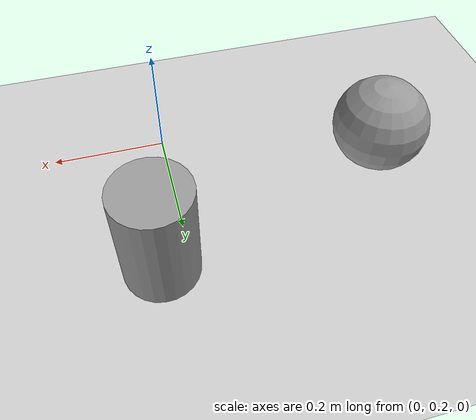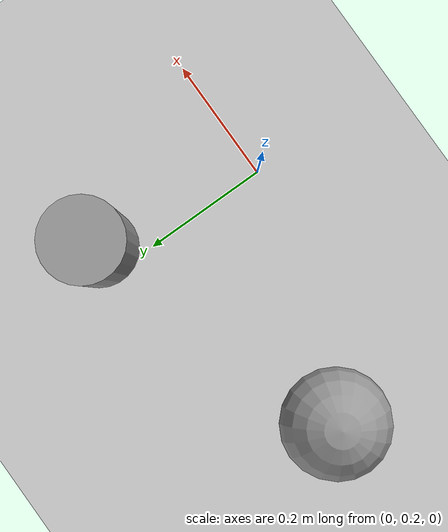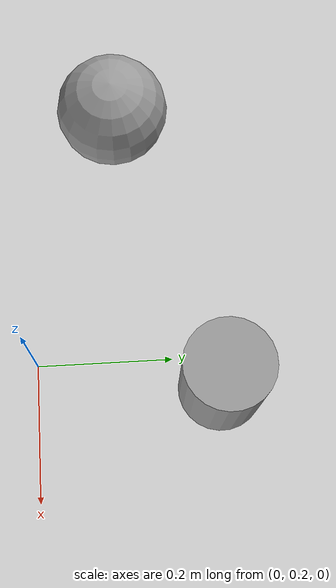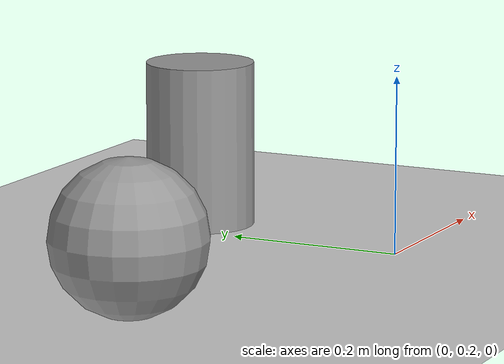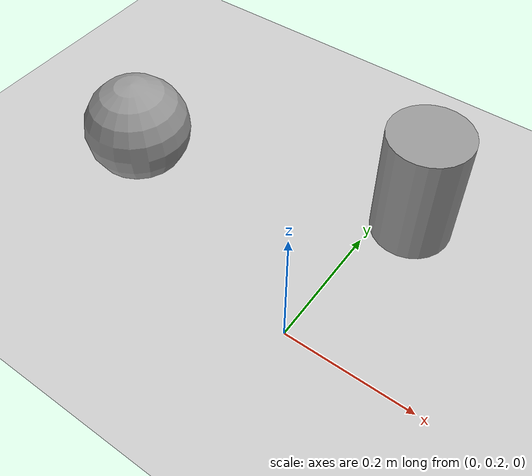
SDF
<sdf version="1.6">
 <world name="default">
  <model name="ground_plane">
   <static>1</static>
   <link name="link">
    <collision name="collision">
     <geometry><plane><normal>0 0 1</normal><size>100 100</size></plane></geometry>
     <surface>
      <contact><collide_bitmask>65535</collide_bitmask></contact>
      <friction><ode><mu>100</mu><mu2>50</mu2></ode></friction>
     </surface>
    </collision>
    <visual name="visual">
     <cast_shadows>0</cast_shadows>
     <geometry><plane><normal>0 0 1</normal><size>100 100</size></plane></geometry>
     <material>
      <script><uri>file://media/materials/scripts/gazebo.material</uri><name>Gazebo/Grey</name></script>
     </material>
    </visual>
   </link>
  </model>
  <model name="unit_sphere_soft">
   <link name="link">
    <inertial>
     <mass>0.002</mass>
     <inertia>
      <ixx>5.55e-06</ixx>
      <ixy>0</ixy>
      <ixz>0</ixz>
      <iyy>5.55e-06</iyy>
      <iyz>0</iyz>
      <izz>5.55e-06</izz>
     </inertia>
    </inertial>
    <visual name="visual">
     <geometry><sphere><radius>0.0832608</radius></sphere></geometry>
     <material>
      <script><name>Gazebo/Grey</name><uri>file://media/materials/scripts/gazebo.material</uri></script>
      <shader type="vertex"><normal_map>__default__</normal_map></shader>
      <ambient>0.3 0.3 0.3 1</ambient>
      <diffuse>0.7 0.7 0.7 1</diffuse>
      <specular>0.01 0.01 0.01 1</specular>
      <emissive>0 0 0 1</emissive>
     </material>
    </visual>
    <collision name="collision">
     <geometry><sphere><radius>0.083261</radius></sphere></geometry>
     <surface>
      <friction>
       <ode><mu>2000</mu><mu2>2000</mu2><fdir1>0 0 0</fdir1><slip1>0</slip1><slip2>0</slip2></ode>
       <torsional>
        <coefficient>1</coefficient>
        <patch_radius>0</patch_radius>
        <surface_radius>0</surface_radius>
        <use_patch_radius>0</use_patch_radius>
        <ode><slip>0</slip></ode>
       </torsional>
      </friction>
      <bounce><restitution_coefficient>0</restitution_coefficient><threshold>1e+06</threshold></bounce>
      <contact>
       <collide_without_contact>0</collide_without_contact>
       <collide_without_contact_bitmask>1</collide_without_contact_bitmask>
       <collide_bitmask>1</collide_bitmask>
       <ode>
        <soft_cfm>2</soft_cfm>
        <soft_erp>2.2</soft_erp>
        <kp>1e+13</kp>
        <kd>1</kd>
        <max_vel>0.01</max_vel>
        <min_depth>0</min_depth>
       </ode>
       <bullet>
        <split_impulse>1</split_impulse>
        <split_impulse_penetration_threshold>-0.01</split_impulse_penetration_threshold>
        <soft_cfm>2</soft_cfm>
        <soft_erp>2.2</soft_erp>
        <kp>1e+13</kp>
        <kd>1</kd>
       </bullet>
      </contact>
     </surface>
    </collision>
   </link>
   <static>0</static>
   <pose>-0.37253 0.329519 0.083261 0 -0 0</pose>
  </model>
  <model name="unit_cylinder_soft">
   <link name="link_0">
    <inertial>
     <mass>2.9756</mass>
     <inertia>
      <ixx>0.0118533</ixx>
      <ixy>0</ixy>
      <ixz>0</ixz>
      <iyy>0.0118533</iyy>
      <iyz>0</iyz>
      <izz>0.00579759</izz>
     </inertia>
    </inertial>
    <pose>-0.018341 -0.000306 -0.030761 0 -0 0.000354</pose>
    <visual name="visual">
     <geometry><cylinder><radius>0.0624239</radius><length>0.190031</length></cylinder></geometry>
     <material>
      <lighting>1</lighting>
      <script><uri>file://media/materials/scripts/gazebo.material</uri><name>Gazebo/Grey</name></script>
      <shader type="vertex"><normal_map>__default__</normal_map></shader>
      <ambient>0.3 0.3 0.3 1</ambient>
      <diffuse>0.7 0.7 0.7 1</diffuse>
      <specular>0.01 0.01 0.01 1</specular>
      <emissive>0 0 0 1</emissive>
     </material>
    </visual>
    <collision name="collision">
     <geometry><cylinder><radius>0.062424</radius><length>0.190031</length></cylinder></geometry>
     <surface>
      <friction>
       <ode><mu>2000</mu><mu2>2000</mu2><fdir1>0 0 0</fdir1><slip1>0</slip1><slip2>0</slip2></ode>
       <torsional>
        <coefficient>1</coefficient>
        <patch_radius>0</patch_radius>
        <surface_radius>0</surface_radius>
        <use_patch_radius>1</use_patch_radius>
        <ode><slip>0</slip></ode>
       </torsional>
      </friction>
      <bounce><restitution_coefficient>0</restitution_coefficient><threshold>1e+06</threshold></bounce>
      <contact>
       <collide_without_contact>0</collide_without_contact>
       <collide_without_contact_bitmask>1</collide_without_contact_bitmask>
       <collide_bitmask>1</collide_bitmask>
       <ode>
        <soft_cfm>2</soft_cfm>
        <soft_erp>2</soft_erp>
        <kp>1e+13</kp>
        <kd>1</kd>
        <max_vel>0.01</max_vel>
        <min_depth>0</min_depth>
       </ode>
       <bullet>
        <split_impulse>1</split_impulse>
        <split_impulse_penetration_threshold>-0.01</split_impulse_penetration_threshold>
        <soft_cfm>2</soft_cfm>
        <soft_erp>2</soft_erp>
        <kp>1e+13</kp>
        <kd>1</kd>
       </bullet>
      </contact>
     </surface>
    </collision>
   </link>
   <static>0</static>
   <plugin name="applied_force_fetcher" filename="libapplied_force_fetcher_plugin.so">
    <LinkName>link_0</LinkName>
   </plugin>
   <pose>0.05736 0.483282 0.125774 1e-06 -0 0.95281</pose>
  </model>
 </world>
</sdf>
